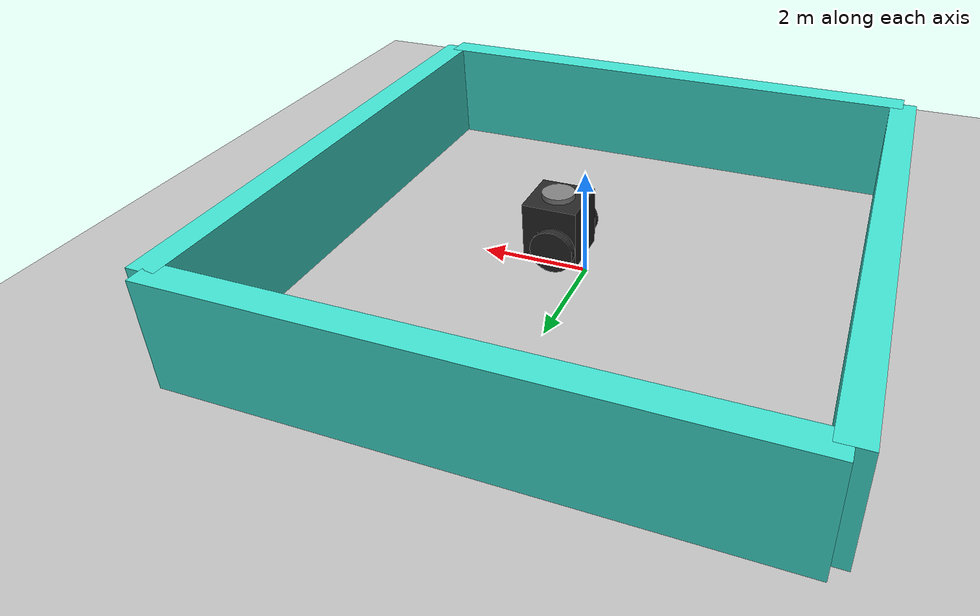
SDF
<?xml version="1.0" ?>
<sdf version="1.8">
    <world name="car_world">
        <!-- Physics settings -->
        <physics name="1ms" type="ignored">
            <max_step_size>0.001</max_step_size>
            <real_time_factor>1.0</real_time_factor>
        </physics>

        <!-- Plugin definitions -->
        <plugin filename="libignition-gazebo-physics-system.so" name="ignition::gazebo::systems::Physics"></plugin>
        <plugin filename="libignition-gazebo-user-commands-system.so" name="ignition::gazebo::systems::UserCommands"></plugin>
        <plugin filename="libignition-gazebo-scene-broadcaster-system.so" name="ignition::gazebo::systems::SceneBroadcaster"></plugin>
        <plugin filename="libignition-gazebo-sensors-system.so" name="ignition::gazebo::systems::Sensors">
            <render_engine>ogre2</render_engine>
        </plugin>

        <!-- Lighting -->
        <light type="directional" name="sun">
            <cast_shadows>true</cast_shadows>
            <pose>0 0 10 0 0 0</pose>
            <diffuse>0.8 0.8 0.8 1</diffuse>
            <specular>0.2 0.2 0.2 1</specular>
            <attenuation>
                <range>1000</range>
                <constant>0.9</constant>
                <linear>0.01</linear>
                <quadratic>0.001</quadratic>
            </attenuation>
            <direction>-0.5 0.1 -0.9</direction>
        </light>

            <!-- Ground plane -->
        <model name="ground_plane">
            <static>true</static>
            <link name="link">
                <collision name="collision">
                    <geometry>
                        <plane>
                            <normal>0 0 1</normal>
                            <size>100 100</size>
                        </plane>
                    </geometry>
                </collision>
                <visual name="visual">
                    <geometry>
                        <plane>
                            <normal>0 0 1</normal>
                            <size>100 100</size>
                        </plane>
                    </geometry>
                    <material>
                        <ambient>0.75 0.75 0.75 1</ambient>  <!-- Light gray color -->
                        <diffuse>0.75 0.75 0.75 1</diffuse>
                        <specular>0.75 0.75 0.75 1</specular>
                    </material>
                    <texture>
                        <size>1 1</size> <!-- Adjust the size for the boxed pattern -->
                    </texture>
                </visual>
            </link>
        </model>

        <!-- Wall 1 - North Wall -->
        <model name='wall_north'>
            <static>true</static>
            <pose>0 5 1 0 0 0</pose> <!-- Position at the north side of the square -->
            <link name='link'>
                <collision name='collision'>
                    <geometry>
                        <box>
                            <size>10 0.25 2</size> <!-- 10m long, 0.5m thick, 2m high -->
                        </box>
                    </geometry>
                </collision>
                <visual name='visual'>
                    <geometry>
                        <box>
                            <size>10 0.5 2</size>
                        </box>
                    </geometry>
                    <material>
                        <ambient>0.25 0.88 0.82 1</ambient> <!-- Turquoise color -->
                        <diffuse>0.25 0.88 0.82 1</diffuse>
                        <specular>0.25 0.88 0.82 1</specular>
                    </material>
                </visual>
            </link>
        </model>

        <!-- Wall 2 - South Wall -->
        <model name='wall_south'>
            <static>true</static>
            <pose>0 -5 1 0 0 0</pose> <!-- Position at the south side of the square -->
            <link name='link'>
            <collision name='collision'>
                <geometry>
                    <box>
                        <size>10 0.25 2</size> <!-- 10m long, 0.5m thick, 2m high -->
                    </box>
                </geometry>
            </collision>
            <visual name='visual'>
                <geometry>
                    <box>
                        <size>10 0.5 2</size>
                    </box>
                </geometry>
                <material>
                    <ambient>0.25 0.88 0.82 1</ambient> <!-- Turquoise color -->
                    <diffuse>0.25 0.88 0.82 1</diffuse>
                    <specular>0.25 0.88 0.82 1</specular>
                </material>
            </visual>
        </link>
        </model>

        <!-- Wall 3 - East Wall -->
        <model name='wall_east'>
            <static>true</static>
            <pose>5 0 1 0 0 1.5707</pose> <!-- Position at the east side, rotated 90 degrees -->
            <link name='link'>
            <collision name='collision'>
                <geometry>
                    <box>
                        <size>10 0.25 2</size> <!-- 10m long, 0.5m thick, 2m high -->
                    </box>
                </geometry>
            </collision>
            <visual name='visual'>
                <geometry>
                    <box>
                        <size>10 0.5 2</size>
                    </box>
                </geometry>
                <material>
                    <ambient>0.25 0.88 0.82 1</ambient> <!-- Turquoise color -->
                    <diffuse>0.25 0.88 0.82 1</diffuse>
                    <specular>0.25 0.88 0.82 1</specular>
                </material>
            </visual>
        </link>
        </model>

        <!-- Wall 4 - West Wall -->
        <model name='wall_west'>
            <static>true</static>
            <pose>-5 0 1 0 0 1.5707</pose> <!-- Position at the west side, rotated 90 degrees -->
            <link name='link'>
            <collision name='collision'>
                <geometry>
                    <box>
                        <size>10 0.25 2</size> <!-- 10m long, 0.5m thick, 2m high -->
                    </box>
                </geometry>
            </collision>
            <visual name='visual'>
                <geometry>
                    <box>
                        <size>10 0.5 2</size>
                    </box>
                </geometry>
                <material>
                    <ambient>0.25 0.88 0.82 1</ambient> <!-- Turquoise color -->
                    <diffuse>0.25 0.88 0.82 1</diffuse>
                    <specular>0.25 0.88 0.82 1</specular>
                </material>
            </visual>
        </link>
        </model>

        <include>
            <pose>0 0 0.4 0 0 0</pose>
            <uri>/media/psf/Developer/Robotics/char-01/char_01/ros2_pkg/models/char_01/char_01_model.sdf</uri>
        </include>
    </world>
</sdf>

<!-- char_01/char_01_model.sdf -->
<sdf version="1.8">
    <model name='vehicle_blue' canonical_link='chassis'>
        <pose>0 0 .12 0 0 0</pose>

        <frame name="lidar_frame" attached_to='chassis'>
            <pose>0.1 0 0.6 0 0 0</pose>
        </frame>

        <!-- Visual representation of the LiDAR as a cylinder -->
 <visual name='lidar_visual'>
    <geometry>
        <cylinder>
            <radius>0.1</radius>
            <length>0.2</length>
        </cylinder>
    </geometry>
    <material>
        <ambient>0.5 0.5 0.5 1</ambient> <!-- Grey color -->
        <diffuse>0.5 0.5 0.5 1</diffuse> <!-- Grey color -->
        <specular>0.5 0.5 0.5 1</specular> <!-- Grey color -->
    </material>
</visual>
<link name='lidar_link'>
<!-- Adjust the pose to place the LiDAR above the chassis -->
<pose relative_to='chassis'>0.0 0 0.5 0 0 0</pose>

<!-- Visual representation of the LiDAR as a cylinder -->
<visual name='lidar_visual'>
    <geometry>
        <cylinder>
            <radius>0.3</radius>
            <length>0.3</length>
        </cylinder>
    </geometry>
    <material>
        <ambient>0.5 0.5 0.5 1</ambient> <!-- Grey color -->
        <diffuse>0.5 0.5 0.5 1</diffuse> <!-- Grey color -->
        <specular>0.5 0.5 0.5 1</specular> <!-- Grey color -->
    </material>
</visual>
</link>

<!-- Fixed Joint for LiDAR -->
<joint name='lidar_joint' type='fixed'>
<parent>chassis</parent>
<child>lidar_link</child>
</joint>

        <link name='chassis'>
            <pose relative_to='__model__'>0.5 0 0.5 0 0 0</pose>
            <inertial>
                <mass>1.14395</mass>
                <inertia>
                    <ixx>0.095329</ixx>
                    <ixy>0</ixy>
                    <ixz>0</ixz>
                    <iyy>0.381317</iyy>
                    <iyz>0</iyz>
                    <izz>0.476646</izz>
                </inertia>
            </inertial>
            <visual name='visual'>
                <geometry>
                    <box>
                        <size>1.0 1.0 1.1</size>
                    </box>
                </geometry>
                <material>
                    <ambient>0.10 0.15 0.15 1</ambient>  <!-- Black color -->
                    <diffuse>0.15 0.15 0.15 1</diffuse>   <!-- Black color -->
                    <specular>0.15 0.15 0.15 1</specular> <!-- Black color -->
                </material>
            </visual>
            <collision name='collision'>
                <geometry>
                    <box>
                        <size>2.0 1.0 0.5</size>
                    </box>
                </geometry>
            </collision>

            <sensor name="imu_sensor" type="imu">
                <always_on>1</always_on>
                <update_rate>1</update_rate>
                <visualize>true</visualize>
                <topic>imu</topic>
            </sensor>
            <sensor name='gpu_lidar' type='gpu_lidar'>
                <pose relative_to='lidar_frame'>0 0 0 0 0 0</pose>
                <topic>lidar</topic>
                <update_rate>5.5</update_rate>
                <ray>
                    <scan>
                        <horizontal>
                            <samples>640</samples>
                            <resolution>1</resolution>
                            <min_angle>-3.14159</min_angle>
                            <max_angle>3.14159</max_angle>
                        </horizontal>
                        <vertical>
                            <samples>1</samples>
                            <resolution>0.01</resolution>
                            <min_angle>0</min_angle>
                            <max_angle>0</max_angle>
                        </vertical>
                    </scan>
                    <range>
                        <min>0.08</min>
                        <max>6.0</max>
                        <resolution>0.01</resolution>
                    </range>
                </ray>
                <always_on>1</always_on>
                <visualize>true</visualize>
            </sensor>
        </link>

        <link name='left_wheel'>
            <pose relative_to="chassis">-0.1 0.6 -.2 -1.5707 0 0</pose>
            <inertial>
                <mass>1</mass>
                <inertia>
                    <ixx>0.043333</ixx>
                    <ixy>0</ixy>
                    <ixz>0</ixz>
                    <iyy>0.043333</iyy>
                    <iyz>0</iyz>
                    <izz>0.08</izz>
                </inertia>
            </inertial>
            <visual name='visual'>
                <geometry>
                    <cylinder>
                        <radius>0.4</radius>
                        <length>0.15</length>
                    </cylinder>
                </geometry>
                <material>
                    <ambient>0.15 0.15 0.15 1</ambient>  <!-- Black color -->
                    <diffuse>0.15 0.15 0.15 1</diffuse>   <!-- Black color -->
                    <specular>0.15 0.15 0.15 1</specular> <!-- Black color -->
                </material>
            </visual>
            <collision name='collision'>
                <geometry>
                    <cylinder>
                        <radius>0.4</radius>
                        <length>0.2</length>
                    </cylinder>
                </geometry>
            </collision>
        </link>

        <link name='right_wheel'>
            <pose relative_to="chassis">-0.1 -0.6 -.2 -1.5707 0 0</pose>
            <inertial>
                <mass>1</mass>
                <inertia>
                    <ixx>0.043333</ixx>
                    <ixy>0</ixy>
                    <ixz>0</ixz>
                    <iyy>0.043333</iyy>
                    <iyz>0</iyz>
                    <izz>0.08</izz>
                </inertia>
            </inertial>
            <visual name='visual'>
                <geometry>
                    <cylinder>
                        <radius>0.4</radius>
                        <length>0.2</length>
                    </cylinder>
                </geometry>
                <material>
                    <ambient>0.15 0.15 0.15 1</ambient>  <!-- Black color -->
                    <diffuse>0.15 0.15 0.15 1</diffuse>   <!-- Black color -->
                    <specular>0.15 0.15 0.15 1</specular> <!-- Black color -->
                </material>
            </visual>
            <collision name='collision'>
                <geometry>
                    <cylinder>
                        <radius>0.4</radius>
                        <length>0.2</length>
                    </cylinder>
                </geometry>
            </collision>
        </link>

        <frame name="caster_frame" attached_to='chassis'>
            <pose>0.30 0 -.448 0 0 0</pose>
        </frame>

        <link name='caster'>
            <pose relative_to='caster_frame'/>
            <inertial>
                <mass>1</mass>
                <inertia>
                    <ixx>0.016</ixx>
                    <ixy>0</ixy>
                    <ixz>0</ixz>
                    <iyy>0.016</iyy>
                    <iyz>0</iyz>
                    <izz>0.016</izz>
                </inertia>
            </inertial>
            <visual name='visual'>
                <geometry>
                    <sphere>
                        <radius>0.2</radius>
                    </sphere>
                </geometry>
                <material>
                    <ambient>0.15 0.15 0.15 1</ambient>  <!-- Black color -->
                    <diffuse>0.15 0.15 0.15 1</diffuse>   <!-- Black color -->
                    <specular>0.15 0.15 0.15 1</specular> <!-- Black color -->
                </material>
            </visual>
            <collision name='collision'>
                <geometry>
                    <sphere>
                        <radius>0.15</radius>
                    </sphere>
                </geometry>
            </collision>
        </link>

        <joint name='left_wheel_joint' type='revolute'>
            <pose relative_to='left_wheel'/>
            <parent>chassis</parent>
            <child>left_wheel</child>
            <axis>
                <xyz expressed_in='__model__'>0 1 0</xyz>
                <limit>
                    <lower>-1.79769e+308</lower>
                    <upper>1.79769e+308</upper>
                </limit>
            </axis>
        </joint>

        <joint name='right_wheel_joint' type='revolute'>
            <pose relative_to='right_wheel'/>
            <parent>chassis</parent>
            <child>right_wheel</child>
            <axis>
                <xyz expressed_in='__model__'>0 1 0</xyz>
                <limit>
                    <lower>-1.79769e+308</lower>
                    <upper>1.79769e+308</upper>
                </limit>
            </axis>
        </joint>

        <joint name='caster_wheel' type='ball'>
            <parent>chassis</parent>
            <child>caster</child>
        </joint>

        <plugin filename="libignition-gazebo-diff-drive-system.so" name="ignition::gazebo::systems::DiffDrive">
            <left_joint>left_wheel_joint</left_joint>
            <right_joint>right_wheel_joint</right_joint>
            <wheel_separation>1.2</wheel_separation>
            <wheel_radius>0.4</wheel_radius>
            <odom_publish_frequency>1</odom_publish_frequency>
            <topic>cmd_vel</topic>
        </plugin>

    </model>
</sdf>
